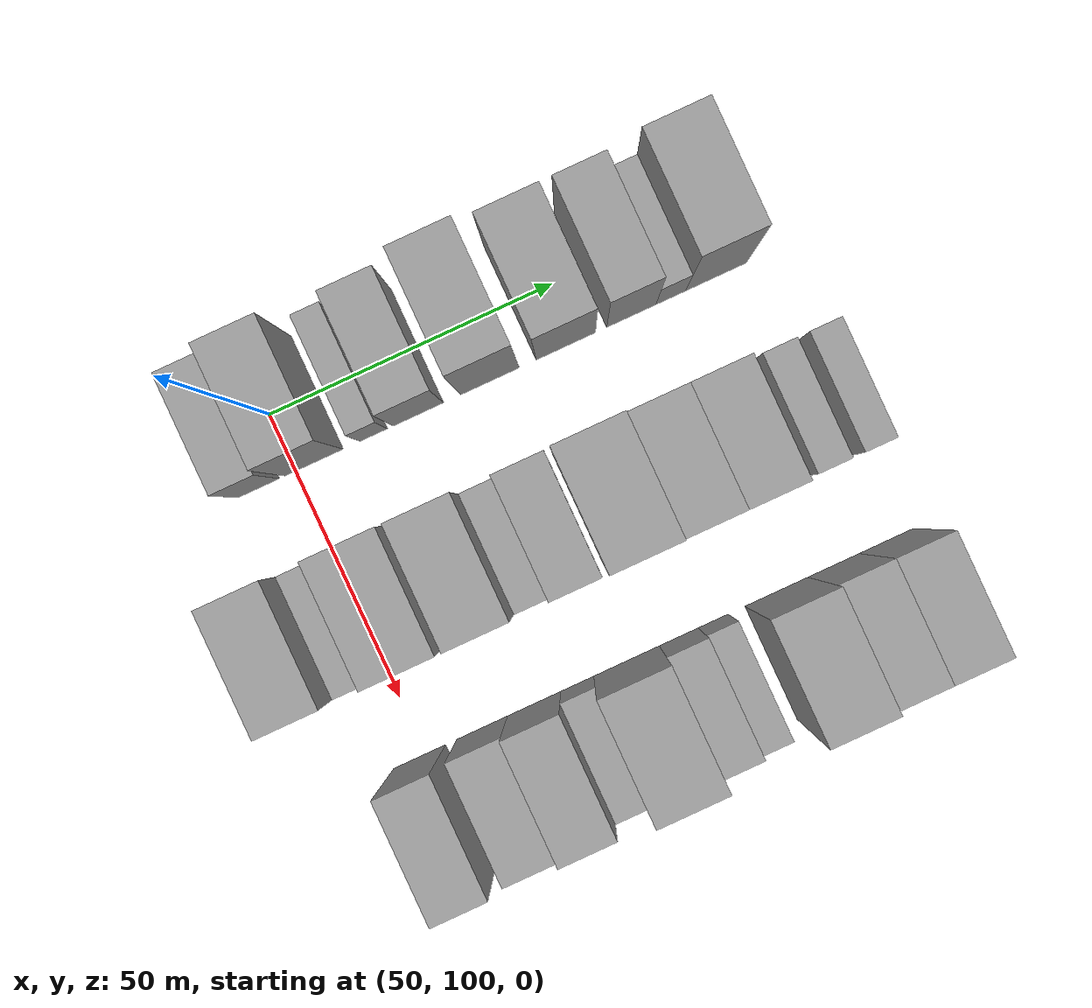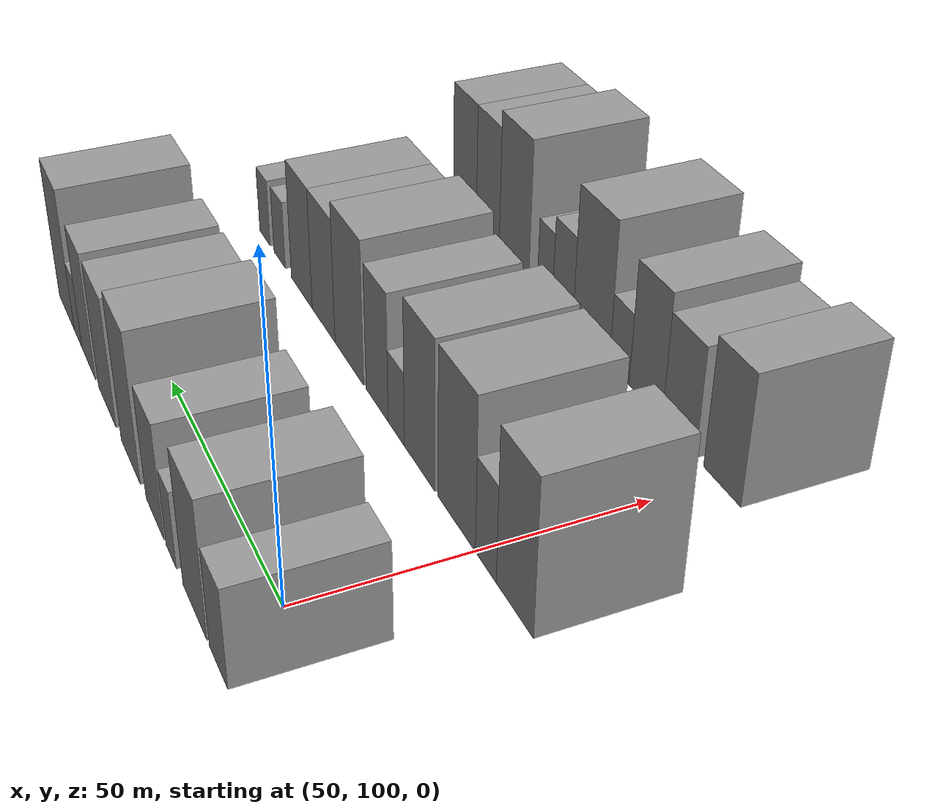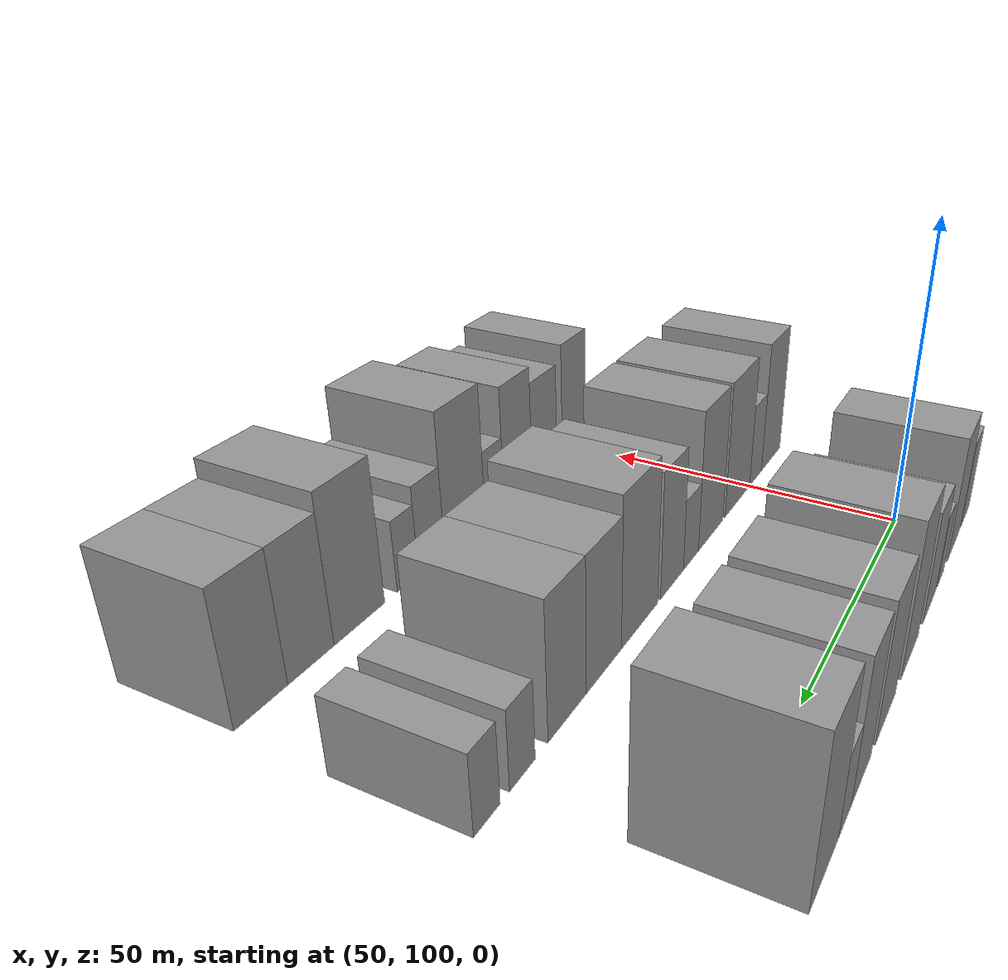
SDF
<sdf version="1.6">
 <world name="default">
  <model name="building_50">
   <static>1</static>
   <pose>50.0000 93.4999 0 0.000000 0.000000 0.000000</pose>
   <link name="link">
    <pose>0 0 7.50 0 0 0</pose>
    <collision name="collision"><geometry><box><size>20.0000 7.3244 15.0000</size></box></geometry></collision>
    <visual name="visual">
     <cast_shadows>0</cast_shadows>
     <geometry><box><size>20.0000 7.3244 15.0000</size></box></geometry>
     <material>
      <script>
       <uri>model://grey_wall/materials/scripts</uri>
       <uri>model://grey_wall/materials/textures</uri>
       <name>vrc/grey_wall</name>
      </script>
     </material>
    </visual>
   </link>
  </model>
  <model name="building_51">
   <static>1</static>
   <pose>50.0000 103.2994 0 0.000000 0.000000 0.000000</pose>
   <link name="link">
    <pose>0 0 10.50 0 0 0</pose>
    <collision name="collision"><geometry><box><size>20.0000 10.2746 21.0000</size></box></geometry></collision>
    <visual name="visual">
     <cast_shadows>0</cast_shadows>
     <geometry><box><size>20.0000 10.2746 21.0000</size></box></geometry>
     <material>
      <script>
       <uri>model://grey_wall/materials/scripts</uri>
       <uri>model://grey_wall/materials/textures</uri>
       <name>vrc/grey_wall</name>
      </script>
     </material>
    </visual>
   </link>
  </model>
  <model name="building_52">
   <static>1</static>
   <pose>50.0000 113.8541 0 0.000000 0.000000 0.000000</pose>
   <link name="link">
    <pose>0 0 6.00 0 0 0</pose>
    <collision name="collision"><geometry><box><size>20.0000 4.8348 12.0000</size></box></geometry></collision>
    <visual name="visual">
     <cast_shadows>0</cast_shadows>
     <geometry><box><size>20.0000 4.8348 12.0000</size></box></geometry>
     <material>
      <script>
       <uri>model://grey_wall/materials/scripts</uri>
       <uri>model://grey_wall/materials/textures</uri>
       <name>vrc/grey_wall</name>
      </script>
     </material>
    </visual>
   </link>
  </model>
  <model name="building_53">
   <static>1</static>
   <pose>50.0000 121.7305 0 0.000000 0.000000 0.000000</pose>
   <link name="link">
    <pose>0 0 9.00 0 0 0</pose>
    <collision name="collision"><geometry><box><size>20.0000 8.9180 18.0000</size></box></geometry></collision>
    <visual name="visual">
     <cast_shadows>0</cast_shadows>
     <geometry><box><size>20.0000 8.9180 18.0000</size></box></geometry>
     <material>
      <script>
       <uri>model://grey_wall/materials/scripts</uri>
       <uri>model://grey_wall/materials/textures</uri>
       <name>vrc/grey_wall</name>
      </script>
     </material>
    </visual>
   </link>
  </model>
  <model name="building_54">
   <static>1</static>
   <pose>50.0000 134.3814 0 0.000000 0.000000 0.000000</pose>
   <link name="link">
    <pose>0 0 12.00 0 0 0</pose>
    <collision name="collision"><geometry><box><size>20.0000 10.3839 24.0000</size></box></geometry></collision>
    <visual name="visual">
     <cast_shadows>0</cast_shadows>
     <geometry><box><size>20.0000 10.3839 24.0000</size></box></geometry>
     <material>
      <script>
       <uri>model://grey_wall/materials/scripts</uri>
       <uri>model://grey_wall/materials/textures</uri>
       <name>vrc/grey_wall</name>
      </script>
     </material>
    </visual>
   </link>
  </model>
  <model name="building_55">
   <static>1</static>
   <pose>50.0000 147.8057 0 0.000000 0.000000 0.000000</pose>
   <link name="link">
    <pose>0 0 10.50 0 0 0</pose>
    <collision name="collision"><geometry><box><size>20.0000 10.4646 21.0000</size></box></geometry></collision>
    <visual name="visual">
     <cast_shadows>0</cast_shadows>
     <geometry><box><size>20.0000 10.4646 21.0000</size></box></geometry>
     <material>
      <script>
       <uri>model://grey_wall/materials/scripts</uri>
       <uri>model://grey_wall/materials/textures</uri>
       <name>vrc/grey_wall</name>
      </script>
     </material>
    </visual>
   </link>
  </model>
  <model name="building_56">
   <static>1</static>
   <pose>50.0000 159.3884 0 0.000000 0.000000 0.000000</pose>
   <link name="link">
    <pose>0 0 10.50 0 0 0</pose>
    <collision name="collision"><geometry><box><size>20.0000 8.7009 21.0000</size></box></geometry></collision>
    <visual name="visual">
     <cast_shadows>0</cast_shadows>
     <geometry><box><size>20.0000 8.7009 21.0000</size></box></geometry>
     <material>
      <script>
       <uri>model://grey_wall/materials/scripts</uri>
       <uri>model://grey_wall/materials/textures</uri>
       <name>vrc/grey_wall</name>
      </script>
     </material>
    </visual>
   </link>
  </model>
  <model name="building_57">
   <static>1</static>
   <pose>50.0000 166.3674 0 0.000000 0.000000 0.000000</pose>
   <link name="link">
    <pose>0 0 6.00 0 0 0</pose>
    <collision name="collision"><geometry><box><size>20.0000 5.2570 12.0000</size></box></geometry></collision>
    <visual name="visual">
     <cast_shadows>0</cast_shadows>
     <geometry><box><size>20.0000 5.2570 12.0000</size></box></geometry>
     <material>
      <script>
       <uri>model://grey_wall/materials/scripts</uri>
       <uri>model://grey_wall/materials/textures</uri>
       <name>vrc/grey_wall</name>
      </script>
     </material>
    </visual>
   </link>
  </model>
  <model name="building_58">
   <static>1</static>
   <pose>50.0000 174.3612 0 0.000000 0.000000 0.000000</pose>
   <link name="link">
    <pose>0 0 12.00 0 0 0</pose>
    <collision name="collision"><geometry><box><size>20.0000 10.7307 24.0000</size></box></geometry></collision>
    <visual name="visual">
     <cast_shadows>0</cast_shadows>
     <geometry><box><size>20.0000 10.7307 24.0000</size></box></geometry>
     <material>
      <script>
       <uri>model://grey_wall/materials/scripts</uri>
       <uri>model://grey_wall/materials/textures</uri>
       <name>vrc/grey_wall</name>
      </script>
     </material>
    </visual>
   </link>
  </model>
  <model name="building_127">
   <static>1</static>
   <pose>85.0000 88.6784 0 0.000000 0.000000 0.000000</pose>
   <link name="link">
    <pose>0 0 12.00 0 0 0</pose>
    <collision name="collision"><geometry><box><size>20.0000 10.2333 24.0000</size></box></geometry></collision>
    <visual name="visual">
     <cast_shadows>0</cast_shadows>
     <geometry><box><size>20.0000 10.2333 24.0000</size></box></geometry>
     <material>
      <script>
       <uri>model://grey_wall/materials/scripts</uri>
       <uri>model://grey_wall/materials/textures</uri>
       <name>vrc/grey_wall</name>
      </script>
     </material>
    </visual>
   </link>
  </model>
  <model name="building_128">
   <static>1</static>
   <pose>85.0000 96.8512 0 0.000000 0.000000 0.000000</pose>
   <link name="link">
    <pose>0 0 7.50 0 0 0</pose>
    <collision name="collision"><geometry><box><size>20.0000 6.1123 15.0000</size></box></geometry></collision>
    <visual name="visual">
     <cast_shadows>0</cast_shadows>
     <geometry><box><size>20.0000 6.1123 15.0000</size></box></geometry>
     <material>
      <script>
       <uri>model://grey_wall/materials/scripts</uri>
       <uri>model://grey_wall/materials/textures</uri>
       <name>vrc/grey_wall</name>
      </script>
     </material>
    </visual>
   </link>
  </model>
  <model name="building_129">
   <static>1</static>
   <pose>85.0000 105.7952 0 0.000000 0.000000 0.000000</pose>
   <link name="link">
    <pose>0 0 12.00 0 0 0</pose>
    <collision name="collision"><geometry><box><size>20.0000 11.7757 24.0000</size></box></geometry></collision>
    <visual name="visual">
     <cast_shadows>0</cast_shadows>
     <geometry><box><size>20.0000 11.7757 24.0000</size></box></geometry>
     <material>
      <script>
       <uri>model://grey_wall/materials/scripts</uri>
       <uri>model://grey_wall/materials/textures</uri>
       <name>vrc/grey_wall</name>
      </script>
     </material>
    </visual>
   </link>
  </model>
  <model name="building_130">
   <static>1</static>
   <pose>85.0000 117.9254 0 0.000000 0.000000 0.000000</pose>
   <link name="link">
    <pose>0 0 12.00 0 0 0</pose>
    <collision name="collision"><geometry><box><size>20.0000 10.4849 24.0000</size></box></geometry></collision>
    <visual name="visual">
     <cast_shadows>0</cast_shadows>
     <geometry><box><size>20.0000 10.4849 24.0000</size></box></geometry>
     <material>
      <script>
       <uri>model://grey_wall/materials/scripts</uri>
       <uri>model://grey_wall/materials/textures</uri>
       <name>vrc/grey_wall</name>
      </script>
     </material>
    </visual>
   </link>
  </model>
  <model name="building_131">
   <static>1</static>
   <pose>85.0000 126.1492 0 0.000000 0.000000 0.000000</pose>
   <link name="link">
    <pose>0 0 6.00 0 0 0</pose>
    <collision name="collision"><geometry><box><size>20.0000 5.9626 12.0000</size></box></geometry></collision>
    <visual name="visual">
     <cast_shadows>0</cast_shadows>
     <geometry><box><size>20.0000 5.9626 12.0000</size></box></geometry>
     <material>
      <script>
       <uri>model://grey_wall/materials/scripts</uri>
       <uri>model://grey_wall/materials/textures</uri>
       <name>vrc/grey_wall</name>
      </script>
     </material>
    </visual>
   </link>
  </model>
  <model name="building_132">
   <static>1</static>
   <pose>85.0000 133.3634 0 0.000000 0.000000 0.000000</pose>
   <link name="link">
    <pose>0 0 10.50 0 0 0</pose>
    <collision name="collision"><geometry><box><size>20.0000 8.4659 21.0000</size></box></geometry></collision>
    <visual name="visual">
     <cast_shadows>0</cast_shadows>
     <geometry><box><size>20.0000 8.4659 21.0000</size></box></geometry>
     <material>
      <script>
       <uri>model://grey_wall/materials/scripts</uri>
       <uri>model://grey_wall/materials/textures</uri>
       <name>vrc/grey_wall</name>
      </script>
     </material>
    </visual>
   </link>
  </model>
  <model name="building_133">
   <static>1</static>
   <pose>85.0000 144.5189 0 0.000000 0.000000 0.000000</pose>
   <link name="link">
    <pose>0 0 12.00 0 0 0</pose>
    <collision name="collision"><geometry><box><size>20.0000 11.8450 24.0000</size></box></geometry></collision>
    <visual name="visual">
     <cast_shadows>0</cast_shadows>
     <geometry><box><size>20.0000 11.8450 24.0000</size></box></geometry>
     <material>
      <script>
       <uri>model://grey_wall/materials/scripts</uri>
       <uri>model://grey_wall/materials/textures</uri>
       <name>vrc/grey_wall</name>
      </script>
     </material>
    </visual>
   </link>
  </model>
  <model name="building_134">
   <static>1</static>
   <pose>85.0000 155.5428 0 0.000000 0.000000 0.000000</pose>
   <link name="link">
    <pose>0 0 10.50 0 0 0</pose>
    <collision name="collision"><geometry><box><size>20.0000 10.2028 21.0000</size></box></geometry></collision>
    <visual name="visual">
     <cast_shadows>0</cast_shadows>
     <geometry><box><size>20.0000 10.2028 21.0000</size></box></geometry>
     <material>
      <script>
       <uri>model://grey_wall/materials/scripts</uri>
       <uri>model://grey_wall/materials/textures</uri>
       <name>vrc/grey_wall</name>
      </script>
     </material>
    </visual>
   </link>
  </model>
  <model name="building_135">
   <static>1</static>
   <pose>85.0000 165.5980 0 0.000000 0.000000 0.000000</pose>
   <link name="link">
    <pose>0 0 10.50 0 0 0</pose>
    <collision name="collision"><geometry><box><size>20.0000 9.9078 21.0000</size></box></geometry></collision>
    <visual name="visual">
     <cast_shadows>0</cast_shadows>
     <geometry><box><size>20.0000 9.9078 21.0000</size></box></geometry>
     <material>
      <script>
       <uri>model://grey_wall/materials/scripts</uri>
       <uri>model://grey_wall/materials/textures</uri>
       <name>vrc/grey_wall</name>
      </script>
     </material>
    </visual>
   </link>
  </model>
  <model name="building_136">
   <static>1</static>
   <pose>85.0000 176.4492 0 0.000000 0.000000 0.000000</pose>
   <link name="link">
    <pose>0 0 6.00 0 0 0</pose>
    <collision name="collision"><geometry><box><size>20.0000 5.7945 12.0000</size></box></geometry></collision>
    <visual name="visual">
     <cast_shadows>0</cast_shadows>
     <geometry><box><size>20.0000 5.7945 12.0000</size></box></geometry>
     <material>
      <script>
       <uri>model://grey_wall/materials/scripts</uri>
       <uri>model://grey_wall/materials/textures</uri>
       <name>vrc/grey_wall</name>
      </script>
     </material>
    </visual>
   </link>
  </model>
  <model name="building_137">
   <static>1</static>
   <pose>85.0000 184.0670 0 0.000000 0.000000 0.000000</pose>
   <link name="link">
    <pose>0 0 6.00 0 0 0</pose>
    <collision name="collision"><geometry><box><size>20.0000 5.4410 12.0000</size></box></geometry></collision>
    <visual name="visual">
     <cast_shadows>0</cast_shadows>
     <geometry><box><size>20.0000 5.4410 12.0000</size></box></geometry>
     <material>
      <script>
       <uri>model://grey_wall/materials/scripts</uri>
       <uri>model://grey_wall/materials/textures</uri>
       <name>vrc/grey_wall</name>
      </script>
     </material>
    </visual>
   </link>
  </model>
  <model name="building_210">
   <static>1</static>
   <pose>120.0000 98.8682 0 0.000000 0.000000 0.000000</pose>
   <link name="link">
    <pose>0 0 10.50 0 0 0</pose>
    <collision name="collision"><geometry><box><size>20.0000 9.1572 21.0000</size></box></geometry></collision>
    <visual name="visual">
     <cast_shadows>0</cast_shadows>
     <geometry><box><size>20.0000 9.1572 21.0000</size></box></geometry>
     <material>
      <script>
       <uri>model://grey_wall/materials/scripts</uri>
       <uri>model://grey_wall/materials/textures</uri>
       <name>vrc/grey_wall</name>
      </script>
     </material>
    </visual>
   </link>
  </model>
  <model name="building_211">
   <static>1</static>
   <pose>120.0000 109.9227 0 0.000000 0.000000 0.000000</pose>
   <link name="link">
    <pose>0 0 9.00 0 0 0</pose>
    <collision name="collision"><geometry><box><size>20.0000 8.9518 18.0000</size></box></geometry></collision>
    <visual name="visual">
     <cast_shadows>0</cast_shadows>
     <geometry><box><size>20.0000 8.9518 18.0000</size></box></geometry>
     <material>
      <script>
       <uri>model://grey_wall/materials/scripts</uri>
       <uri>model://grey_wall/materials/textures</uri>
       <name>vrc/grey_wall</name>
      </script>
     </material>
    </visual>
   </link>
  </model>
  <model name="building_212">
   <static>1</static>
   <pose>120.0000 119.0977 0 0.000000 0.000000 0.000000</pose>
   <link name="link">
    <pose>0 0 10.50 0 0 0</pose>
    <collision name="collision"><geometry><box><size>20.0000 9.3982 21.0000</size></box></geometry></collision>
    <visual name="visual">
     <cast_shadows>0</cast_shadows>
     <geometry><box><size>20.0000 9.3982 21.0000</size></box></geometry>
     <material>
      <script>
       <uri>model://grey_wall/materials/scripts</uri>
       <uri>model://grey_wall/materials/textures</uri>
       <name>vrc/grey_wall</name>
      </script>
     </material>
    </visual>
   </link>
  </model>
  <model name="building_213">
   <static>1</static>
   <pose>120.0000 126.7204 0 0.000000 0.000000 0.000000</pose>
   <link name="link">
    <pose>0 0 6.00 0 0 0</pose>
    <collision name="collision"><geometry><box><size>20.0000 5.8471 12.0000</size></box></geometry></collision>
    <visual name="visual">
     <cast_shadows>0</cast_shadows>
     <geometry><box><size>20.0000 5.8471 12.0000</size></box></geometry>
     <material>
      <script>
       <uri>model://grey_wall/materials/scripts</uri>
       <uri>model://grey_wall/materials/textures</uri>
       <name>vrc/grey_wall</name>
      </script>
     </material>
    </visual>
   </link>
  </model>
  <model name="building_214">
   <static>1</static>
   <pose>120.0000 135.4480 0 0.000000 0.000000 0.000000</pose>
   <link name="link">
    <pose>0 0 12.00 0 0 0</pose>
    <collision name="collision"><geometry><box><size>20.0000 11.6081 24.0000</size></box></geometry></collision>
    <visual name="visual">
     <cast_shadows>0</cast_shadows>
     <geometry><box><size>20.0000 11.6081 24.0000</size></box></geometry>
     <material>
      <script>
       <uri>model://grey_wall/materials/scripts</uri>
       <uri>model://grey_wall/materials/textures</uri>
       <name>vrc/grey_wall</name>
      </script>
     </material>
    </visual>
   </link>
  </model>
  <model name="building_215">
   <static>1</static>
   <pose>120.0000 144.6970 0 0.000000 0.000000 0.000000</pose>
   <link name="link">
    <pose>0 0 7.50 0 0 0</pose>
    <collision name="collision"><geometry><box><size>20.0000 6.8898 15.0000</size></box></geometry></collision>
    <visual name="visual">
     <cast_shadows>0</cast_shadows>
     <geometry><box><size>20.0000 6.8898 15.0000</size></box></geometry>
     <material>
      <script>
       <uri>model://grey_wall/materials/scripts</uri>
       <uri>model://grey_wall/materials/textures</uri>
       <name>vrc/grey_wall</name>
      </script>
     </material>
    </visual>
   </link>
  </model>
  <model name="building_216">
   <static>1</static>
   <pose>120.0000 150.7747 0 0.000000 0.000000 0.000000</pose>
   <link name="link">
    <pose>0 0 6.00 0 0 0</pose>
    <collision name="collision"><geometry><box><size>20.0000 5.2656 12.0000</size></box></geometry></collision>
    <visual name="visual">
     <cast_shadows>0</cast_shadows>
     <geometry><box><size>20.0000 5.2656 12.0000</size></box></geometry>
     <material>
      <script>
       <uri>model://grey_wall/materials/scripts</uri>
       <uri>model://grey_wall/materials/textures</uri>
       <name>vrc/grey_wall</name>
      </script>
     </material>
    </visual>
   </link>
  </model>
  <model name="building_217">
   <static>1</static>
   <pose>120.0000 161.9775 0 0.000000 0.000000 0.000000</pose>
   <link name="link">
    <pose>0 0 12.00 0 0 0</pose>
    <collision name="collision"><geometry><box><size>20.0000 11.1400 24.0000</size></box></geometry></collision>
    <visual name="visual">
     <cast_shadows>0</cast_shadows>
     <geometry><box><size>20.0000 11.1400 24.0000</size></box></geometry>
     <material>
      <script>
       <uri>model://grey_wall/materials/scripts</uri>
       <uri>model://grey_wall/materials/textures</uri>
       <name>vrc/grey_wall</name>
      </script>
     </material>
    </visual>
   </link>
  </model>
  <model name="building_218">
   <static>1</static>
   <pose>120.0000 172.1030 0 0.000000 0.000000 0.000000</pose>
   <link name="link">
    <pose>0 0 10.50 0 0 0</pose>
    <collision name="collision"><geometry><box><size>20.0000 9.1110 21.0000</size></box></geometry></collision>
    <visual name="visual">
     <cast_shadows>0</cast_shadows>
     <geometry><box><size>20.0000 9.1110 21.0000</size></box></geometry>
     <material>
      <script>
       <uri>model://grey_wall/materials/scripts</uri>
       <uri>model://grey_wall/materials/textures</uri>
       <name>vrc/grey_wall</name>
      </script>
     </material>
    </visual>
   </link>
  </model>
  <model name="building_219">
   <static>1</static>
   <pose>120.0000 181.4383 0 0.000000 0.000000 0.000000</pose>
   <link name="link">
    <pose>0 0 10.50 0 0 0</pose>
    <collision name="collision"><geometry><box><size>20.0000 9.5596 21.0000</size></box></geometry></collision>
    <visual name="visual">
     <cast_shadows>0</cast_shadows>
     <geometry><box><size>20.0000 9.5596 21.0000</size></box></geometry>
     <material>
      <script>
       <uri>model://grey_wall/materials/scripts</uri>
       <uri>model://grey_wall/materials/textures</uri>
       <name>vrc/grey_wall</name>
      </script>
     </material>
    </visual>
   </link>
  </model>
 </world>
</sdf>
